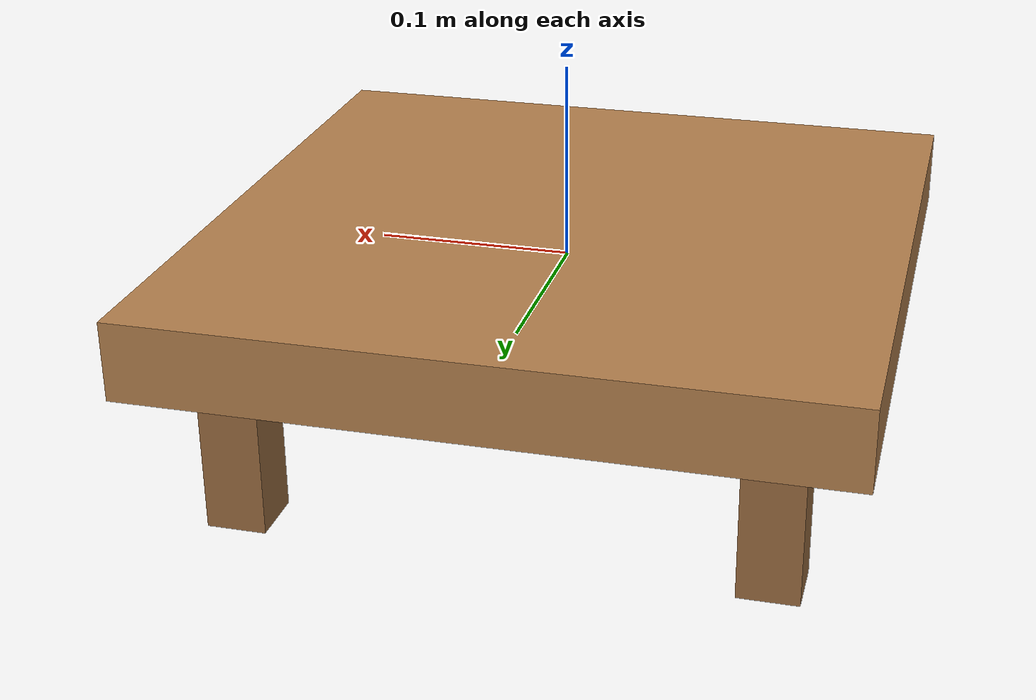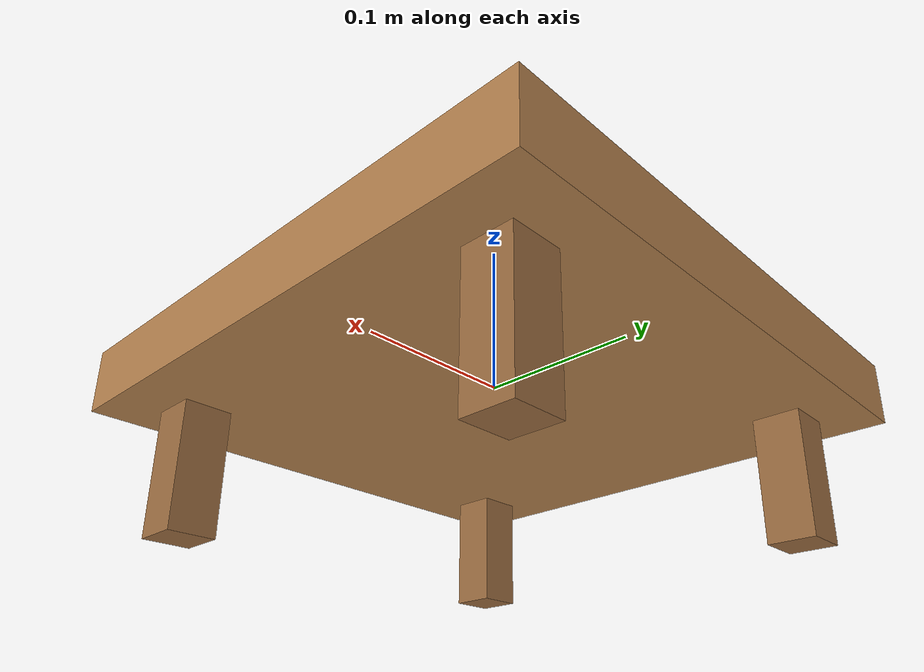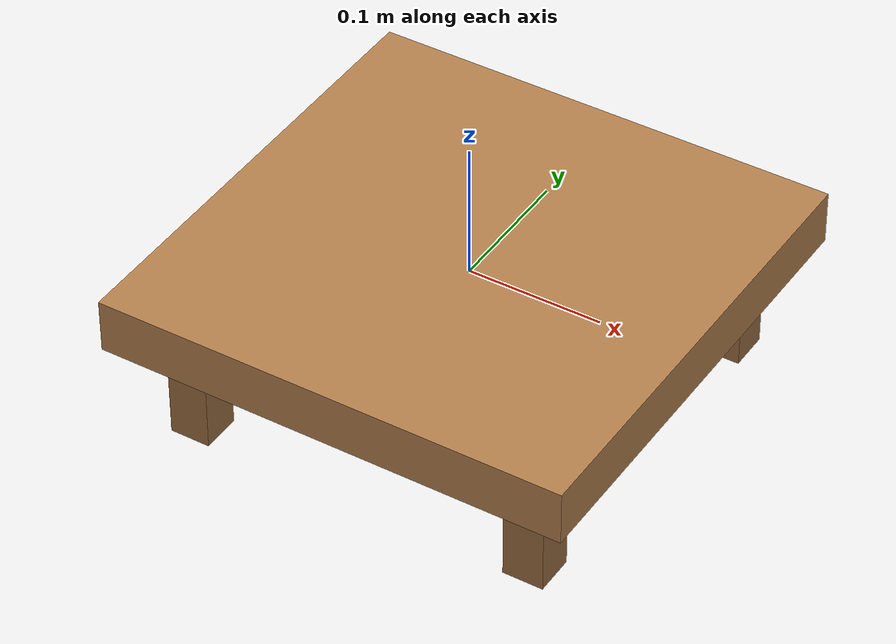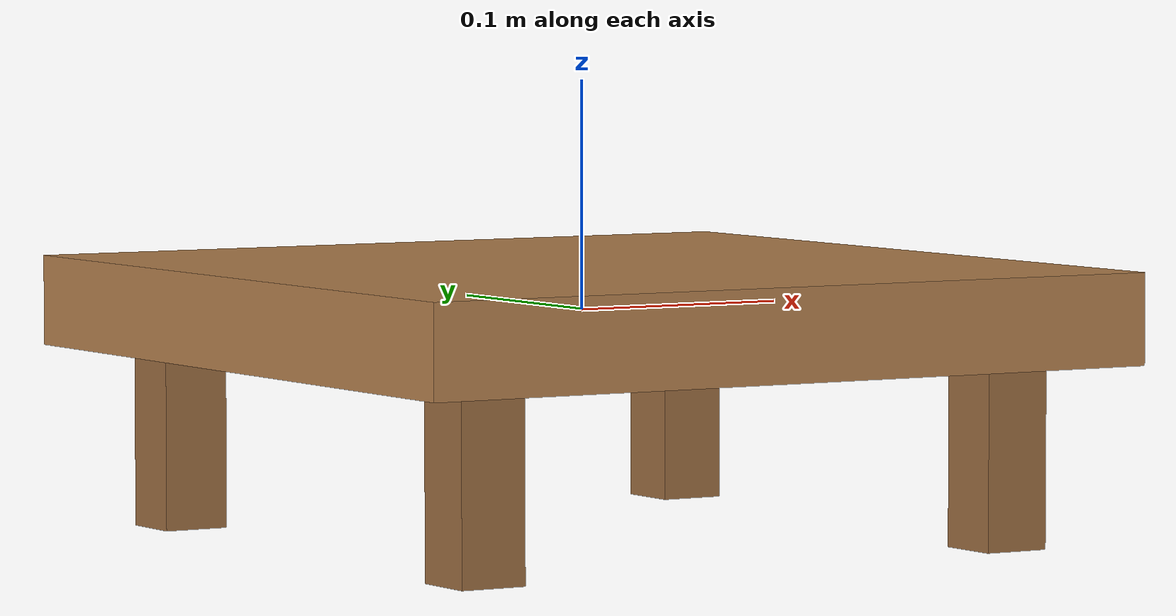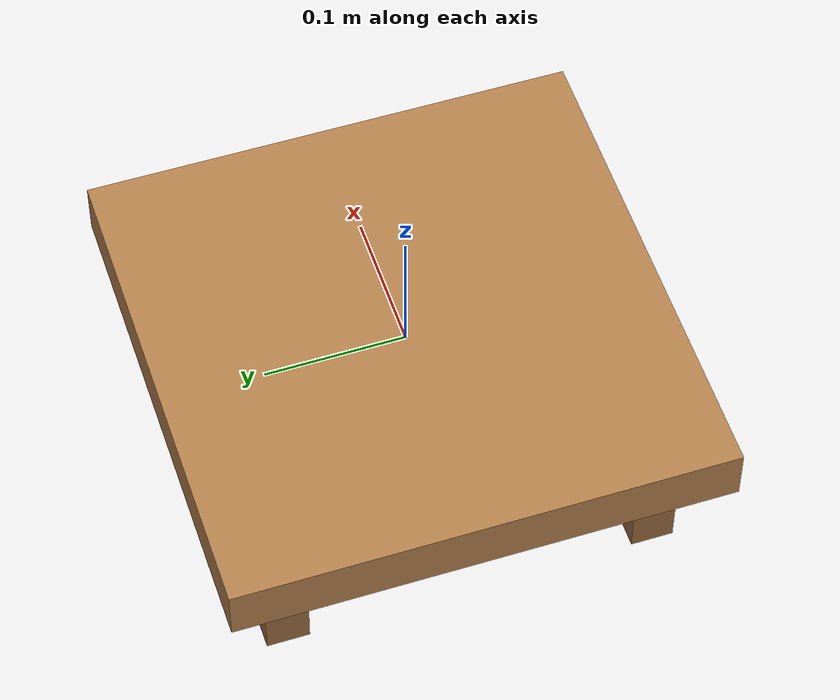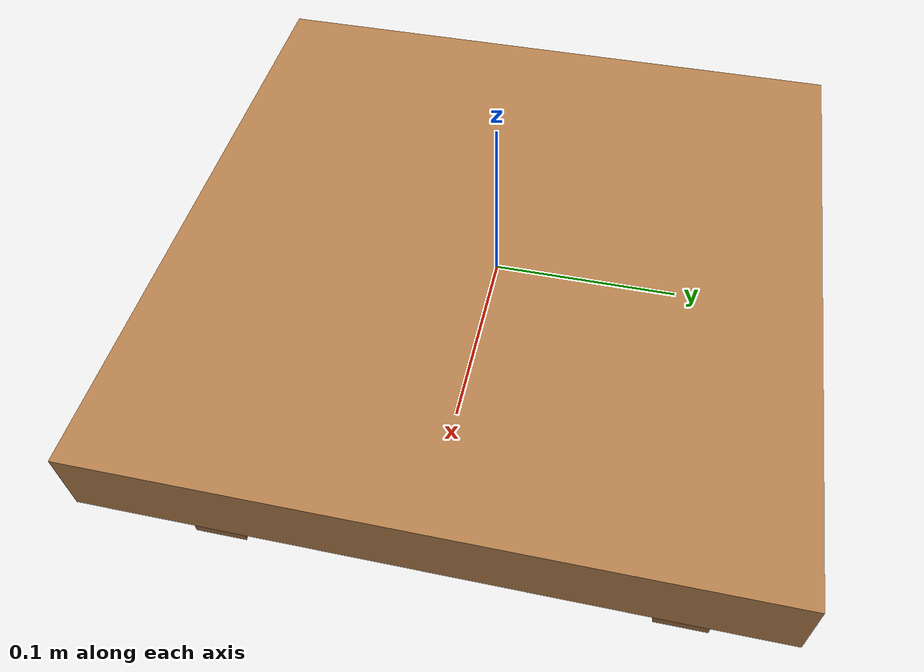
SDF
<?xml version="1.0" ?>
<sdf version="1.6">
  <model name="table">
    <static>true</static>
    <link name="table_top">
      <inertial><mass>2.0</mass><inertia><ixx>0.02</ixx><iyy>0.02</iyy><izz>0.02</izz><ixy>0</ixy><ixz>0</ixz><iyz>0</iyz></inertia></inertial>
      <collision name="collision">
        <geometry><box><size>0.35 0.35 0.04</size></box></geometry>
        <surface><friction><ode><mu>0.8</mu><mu2>0.8</mu2></ode></friction></surface>
      </collision>
      <visual name="visual">
        <geometry><box><size>0.35 0.35 0.04</size></box></geometry>
        <material><ambient>0.55 0.4 0.25 1</ambient><diffuse>0.7 0.5 0.3 1</diffuse></material>
      </visual>
    </link>
    <link name="leg1">
      <pose>-0.13 -0.13 -0.05 0 0 0</pose>
      <collision name="c"><geometry><box><size>0.03 0.03 0.10</size></box></geometry></collision>
      <visual name="v"><geometry><box><size>0.03 0.03 0.10</size></box></geometry><material><ambient>0.45 0.32 0.2 1</ambient><diffuse>0.6 0.42 0.25 1</diffuse></material></visual>
      <inertial><mass>0.1</mass><inertia><ixx>0.0002</ixx><iyy>0.0002</iyy><izz>0.0002</izz><ixy>0</ixy><ixz>0</ixz><iyz>0</iyz></inertia></inertial>
    </link>
    <link name="leg2">
      <pose>0.13 -0.13 -0.05 0 0 0</pose>
      <collision name="c"><geometry><box><size>0.03 0.03 0.10</size></box></geometry></collision>
      <visual name="v"><geometry><box><size>0.03 0.03 0.10</size></box></geometry><material><ambient>0.45 0.32 0.2 1</ambient><diffuse>0.6 0.42 0.25 1</diffuse></material></visual>
      <inertial><mass>0.1</mass><inertia><ixx>0.0002</ixx><iyy>0.0002</iyy><izz>0.0002</izz><ixy>0</ixy><ixz>0</ixz><iyz>0</iyz></inertia></inertial>
    </link>
    <link name="leg3">
      <pose>-0.13 0.13 -0.05 0 0 0</pose>
      <collision name="c"><geometry><box><size>0.03 0.03 0.10</size></box></geometry></collision>
      <visual name="v"><geometry><box><size>0.03 0.03 0.10</size></box></geometry><material><ambient>0.45 0.32 0.2 1</ambient><diffuse>0.6 0.42 0.25 1</diffuse></material></visual>
      <inertial><mass>0.1</mass><inertia><ixx>0.0002</ixx><iyy>0.0002</iyy><izz>0.0002</izz><ixy>0</ixy><ixz>0</ixz><iyz>0</iyz></inertia></inertial>
    </link>
    <link name="leg4">
      <pose>0.13 0.13 -0.05 0 0 0</pose>
      <collision name="c"><geometry><box><size>0.03 0.03 0.10</size></box></geometry></collision>
      <visual name="v"><geometry><box><size>0.03 0.03 0.10</size></box></geometry><material><ambient>0.45 0.32 0.2 1</ambient><diffuse>0.6 0.42 0.25 1</diffuse></material></visual>
      <inertial><mass>0.1</mass><inertia><ixx>0.0002</ixx><iyy>0.0002</iyy><izz>0.0002</izz><ixy>0</ixy><ixz>0</ixz><iyz>0</iyz></inertia></inertial>
    </link>
    <joint name="top_leg1" type="fixed"><parent>table_top</parent><child>leg1</child></joint>
    <joint name="top_leg2" type="fixed"><parent>table_top</parent><child>leg2</child></joint>
    <joint name="top_leg3" type="fixed"><parent>table_top</parent><child>leg3</child></joint>
    <joint name="top_leg4" type="fixed"><parent>table_top</parent><child>leg4</child></joint>
  </model>
</sdf>
